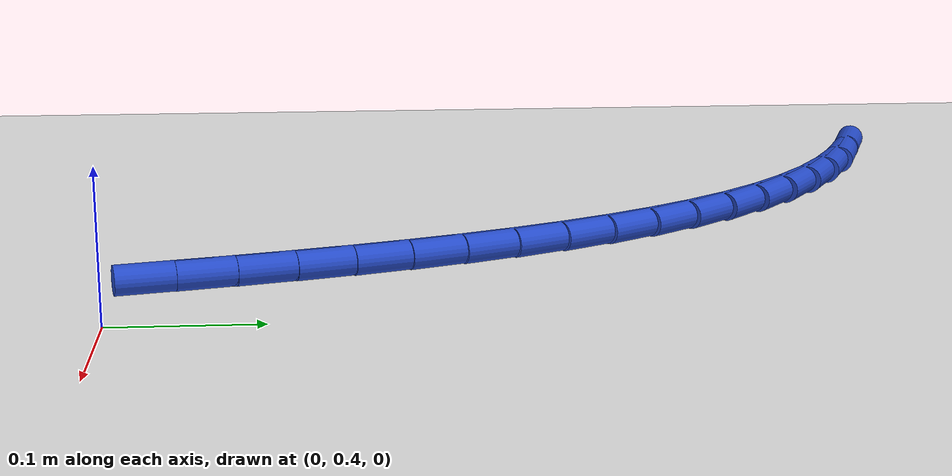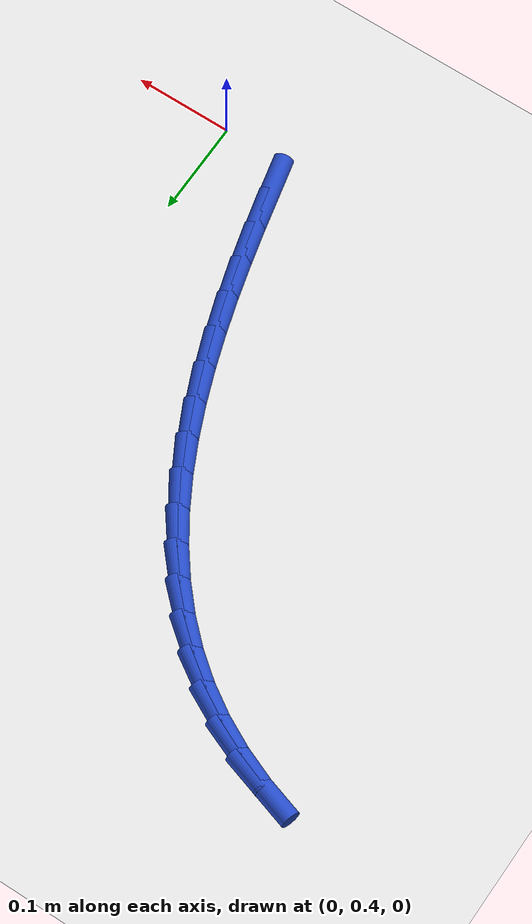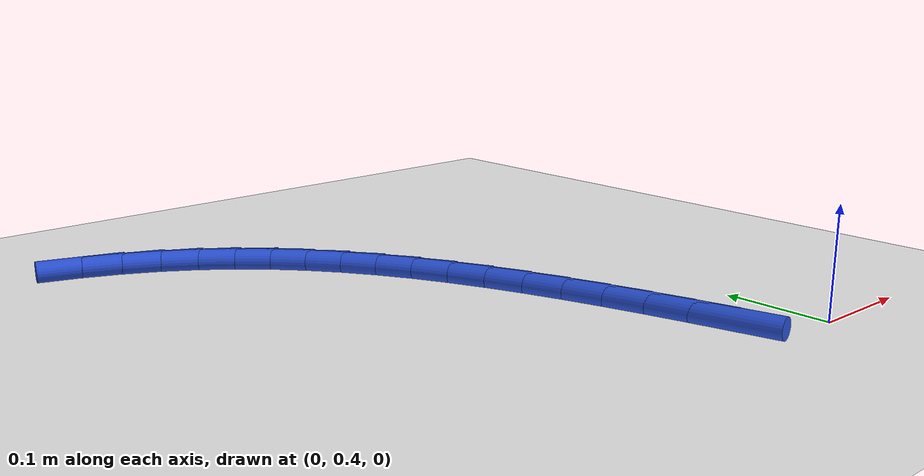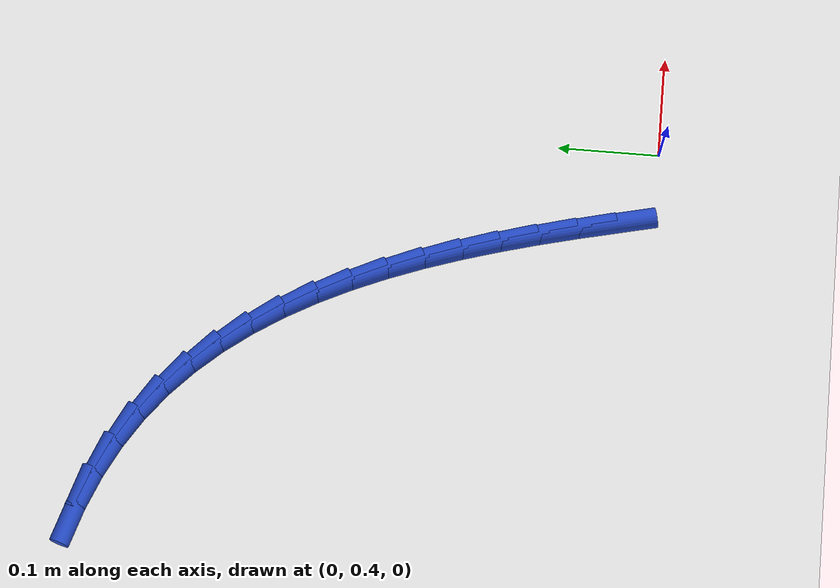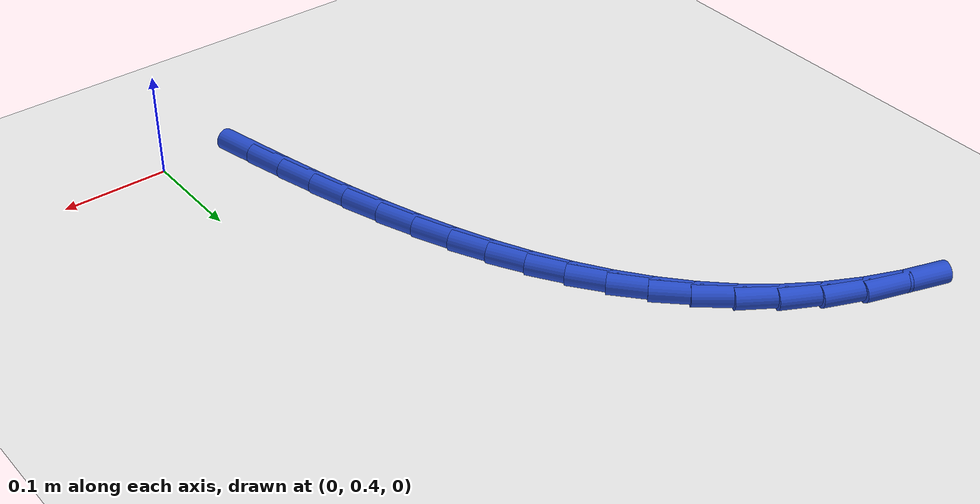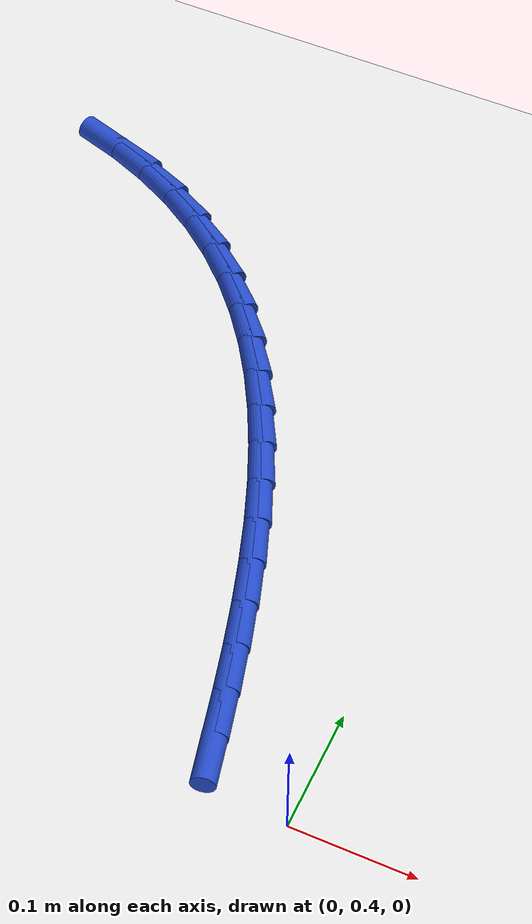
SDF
<sdf version="1.6">
 <world name="default">
  <model name="ground_plane">
   <static>1</static>
   <link name="link">
    <collision name="collision">
     <geometry><plane><normal>0 0 1</normal><size>100 100</size></plane></geometry>
     <surface><friction><ode><mu>100</mu><mu2>50</mu2></ode></friction></surface>
    </collision>
    <visual name="visual">
     <cast_shadows>0</cast_shadows>
     <geometry><plane><normal>0 0 1</normal><size>100 100</size></plane></geometry>
     <material>
      <script><uri>file://media/materials/scripts/gazebo.material</uri><name>Gazebo/WhiteGlow</name></script>
     </material>
    </visual>
   </link>
  </model>
  <model name="line">
   <link name="link_12">
    <pose>-0.07507209685232474 0.4384856899602376 0.01 0 1.57 -1.3405846339166736</pose>
    <collision name="collision">
     <geometry><cylinder><radius>0.01</radius><length>0.08</length></cylinder></geometry>
    </collision>
    <visual name="visual">
     <material>
      <script><name>Gazebo/Blue</name><uri>file://media/materials/scripts/gazebo.material</uri></script>
     </material>
     <geometry><cylinder><radius>0.01</radius><length>0.08</length></cylinder></geometry>
    </visual>
   </link>
   <link name="link_13">
    <pose>-0.08401628641039006 0.4766489214602324 0.01 0 1.57 -1.3238931657171182</pose>
    <collision name="collision">
     <geometry><cylinder><radius>0.01</radius><length>0.08</length></cylinder></geometry>
    </collision>
    <visual name="visual">
     <material>
      <script><name>Gazebo/Blue</name><uri>file://media/materials/scripts/gazebo.material</uri></script>
     </material>
     <geometry><cylinder><radius>0.01</radius><length>0.08</length></cylinder></geometry>
    </visual>
   </link>
   <link name="link_14">
    <pose>-0.09357330497335362 0.5145667120253967 0.01 0 1.57 -1.302665730054357</pose>
    <collision name="collision">
     <geometry><cylinder><radius>0.01</radius><length>0.08</length></cylinder></geometry>
    </collision>
    <visual name="visual">
     <material>
      <script><name>Gazebo/Blue</name><uri>file://media/materials/scripts/gazebo.material</uri></script>
     </material>
     <geometry><cylinder><radius>0.01</radius><length>0.08</length></cylinder></geometry>
    </visual>
   </link>
   <link name="link_15">
    <pose>-0.10387653952242493 0.5520675770106828 0.01 0 1.57 -1.276630117853806</pose>
    <collision name="collision">
     <geometry><cylinder><radius>0.01</radius><length>0.08</length></cylinder></geometry>
    </collision>
    <visual name="visual">
     <material>
      <script><name>Gazebo/Blue</name><uri>file://media/materials/scripts/gazebo.material</uri></script>
     </material>
     <geometry><cylinder><radius>0.01</radius><length>0.08</length></cylinder></geometry>
    </visual>
   </link>
   <link name="link_16">
    <pose>-0.11505937703881346 0.5889800317710423 0.01 0 1.57 -1.245441064744905</pose>
    <collision name="collision">
     <geometry><cylinder><radius>0.01</radius><length>0.08</length></cylinder></geometry>
    </collision>
    <visual name="visual">
     <material>
      <script><name>Gazebo/Blue</name><uri>file://media/materials/scripts/gazebo.material</uri></script>
     </material>
     <geometry><cylinder><radius>0.01</radius><length>0.08</length></cylinder></geometry>
    </visual>
   </link>
   <link name="link_17">
    <pose>-0.12725520450372874 0.6251325916614273 0.01 0 1.57 -1.2086878591160524</pose>
    <collision name="collision">
     <geometry><cylinder><radius>0.01</radius><length>0.08</length></cylinder></geometry>
    </collision>
    <visual name="visual">
     <material>
      <script><name>Gazebo/Blue</name><uri>file://media/materials/scripts/gazebo.material</uri></script>
     </material>
     <geometry><cylinder><radius>0.01</radius><length>0.08</length></cylinder></geometry>
    </visual>
   </link>
   <link name="link_18">
    <pose>-0.1405974088983803 0.6603537720367901 0.01 0 1.57 -1.1659086810511956</pose>
    <collision name="collision">
     <geometry><cylinder><radius>0.01</radius><length>0.08</length></cylinder></geometry>
    </collision>
    <visual name="visual">
     <material>
      <script><name>Gazebo/Blue</name><uri>file://media/materials/scripts/gazebo.material</uri></script>
     </material>
     <geometry><cylinder><radius>0.01</radius><length>0.08</length></cylinder></geometry>
    </visual>
   </link>
   <link name="link_19">
    <pose>-0.15521937720397766 0.6944720882520826 0.01 0 1.57 -1.1166161307155849</pose>
    <collision name="collision">
     <geometry><cylinder><radius>0.01</radius><length>0.08</length></cylinder></geometry>
    </collision>
    <visual name="visual">
     <material>
      <script><name>Gazebo/Blue</name><uri>file://media/materials/scripts/gazebo.material</uri></script>
     </material>
     <geometry><cylinder><radius>0.01</radius><length>0.08</length></cylinder></geometry>
    </visual>
   </link>
   <link name="link_20">
    <pose>-0.17125449640173024 0.7273160556622567 0.01 0 1.57 -1.0603394749302981</pose>
    <collision name="collision">
     <geometry><cylinder><radius>0.01</radius><length>0.08</length></cylinder></geometry>
    </collision>
    <visual name="visual">
     <material>
      <script><name>Gazebo/Blue</name><uri>file://media/materials/scripts/gazebo.material</uri></script>
     </material>
     <geometry><cylinder><radius>0.01</radius><length>0.08</length></cylinder></geometry>
    </visual>
   </link>
   <link name="link_21">
    <pose>-0.18883615347284763 0.7587141896222646 0.01 0 1.57 -0.9966893404170106</pose>
    <collision name="collision">
     <geometry><cylinder><radius>0.01</radius><length>0.08</length></cylinder></geometry>
    </collision>
    <visual name="visual">
     <material>
      <script><name>Gazebo/Blue</name><uri>file://media/materials/scripts/gazebo.material</uri></script>
     </material>
     <geometry><cylinder><radius>0.01</radius><length>0.08</length></cylinder></geometry>
    </visual>
   </link>
   <link name="link_22">
    <pose>-0.2080977353985394 0.7884950054870585 0.01 0 1.57 -0.9254484787132689</pose>
    <collision name="collision">
     <geometry><cylinder><radius>0.01</radius><length>0.08</length></cylinder></geometry>
    </collision>
    <visual name="visual">
     <material>
      <script><name>Gazebo/Blue</name><uri>file://media/materials/scripts/gazebo.material</uri></script>
     </material>
     <geometry><cylinder><radius>0.01</radius><length>0.08</length></cylinder></geometry>
    </visual>
   </link>
   <link name="link_23">
    <pose>-0.22917262916001474 0.8164870186115893 0.01 0 1.57 -0.8466858286263065</pose>
    <collision name="collision">
     <geometry><cylinder><radius>0.01</radius><length>0.08</length></cylinder></geometry>
    </collision>
    <visual name="visual">
     <material>
      <script><name>Gazebo/Blue</name><uri>file://media/materials/scripts/gazebo.material</uri></script>
     </material>
     <geometry><cylinder><radius>0.01</radius><length>0.08</length></cylinder></geometry>
    </visual>
   </link>
   <link name="link_24">
    <pose>-0.25219422173848366 0.8425187443508112 0.01 0 1.57 -0.7608789018193167</pose>
    <collision name="collision">
     <geometry><cylinder><radius>0.01</radius><length>0.08</length></cylinder></geometry>
    </collision>
    <visual name="visual">
     <material>
      <script><name>Gazebo/Blue</name><uri>file://media/materials/scripts/gazebo.material</uri></script>
     </material>
     <geometry><cylinder><radius>0.01</radius><length>0.08</length></cylinder></geometry>
    </visual>
   </link>
   <link name="link_25">
    <pose>-0.2772959001151551 0.866418698059674 0.01 0 1.57 -0.669013049691923</pose>
    <collision name="collision">
     <geometry><cylinder><radius>0.01</radius><length>0.08</length></cylinder></geometry>
    </collision>
    <visual name="visual">
     <material>
      <script><name>Gazebo/Blue</name><uri>file://media/materials/scripts/gazebo.material</uri></script>
     </material>
     <geometry><cylinder><radius>0.01</radius><length>0.08</length></cylinder></geometry>
    </visual>
   </link>
   <link name="link_26">
    <pose>-0.30461105127123916 0.8880153950931314 0.01 0 1.57 -0.5729930037037516</pose>
    <collision name="collision">
     <geometry><cylinder><radius>0.01</radius><length>0.08</length></cylinder></geometry>
    </collision>
    <visual name="visual">
     <material>
      <script><name>Gazebo/Blue</name><uri>file://media/materials/scripts/gazebo.material</uri></script>
     </material>
     <geometry><cylinder><radius>0.01</radius><length>0.08</length></cylinder></geometry>
    </visual>
   </link>
   <link name="link_27">
    <pose>-0.3342555174768701 0.9071419848911536 0.01 0 1.57 -0.4790684563898968</pose>
    <collision name="collision">
     <geometry><cylinder><radius>0.01</radius><length>0.08</length></cylinder></geometry>
    </collision>
    <visual name="visual">
     <material>
      <script><name>Gazebo/Blue</name><uri>file://media/materials/scripts/gazebo.material</uri></script>
     </material>
     <geometry><cylinder><radius>0.01</radius><length>0.08</length></cylinder></geometry>
    </visual>
   </link>
   <link name="link_28">
    <pose>-0.36611720942789255 0.9236918204667054 0.01 0 1.57 -0.3902975250553778</pose>
    <collision name="collision">
     <geometry><cylinder><radius>0.01</radius><length>0.08</length></cylinder></geometry>
    </collision>
    <visual name="visual">
     <material>
      <script><name>Gazebo/Blue</name><uri>file://media/materials/scripts/gazebo.material</uri></script>
     </material>
     <geometry><cylinder><radius>0.01</radius><length>0.08</length></cylinder></geometry>
    </visual>
   </link>
   <link name="link_29">
    <pose>-0.39992473778868326 0.9376003307544477 0.01 0 1.57 -0.3058704722440527</pose>
    <collision name="collision">
     <geometry><cylinder><radius>0.01</radius><length>0.08</length></cylinder></geometry>
    </collision>
    <visual name="visual">
     <material>
      <script><name>Gazebo/Blue</name><uri>file://media/materials/scripts/gazebo.material</uri></script>
     </material>
     <geometry><cylinder><radius>0.01</radius><length>0.08</length></cylinder></geometry>
    </visual>
   </link>
  </model>
 </world>
</sdf>
